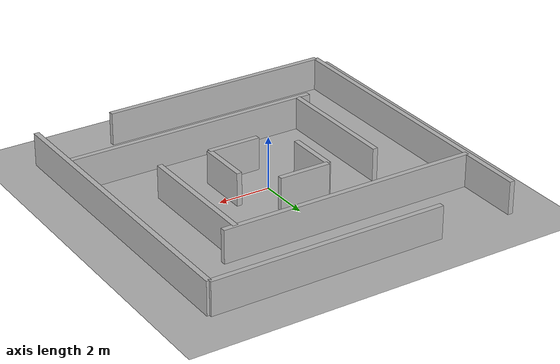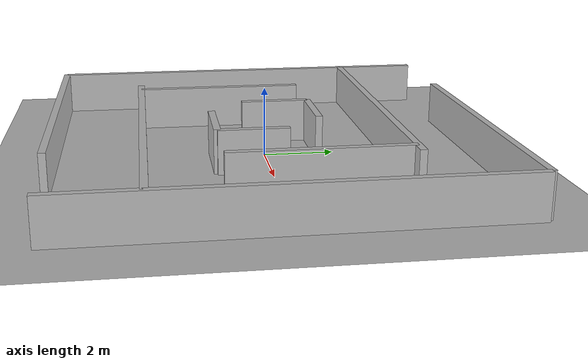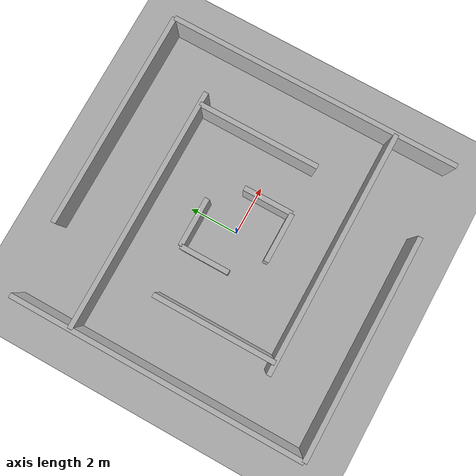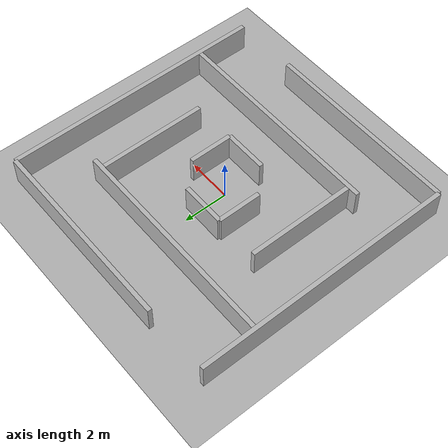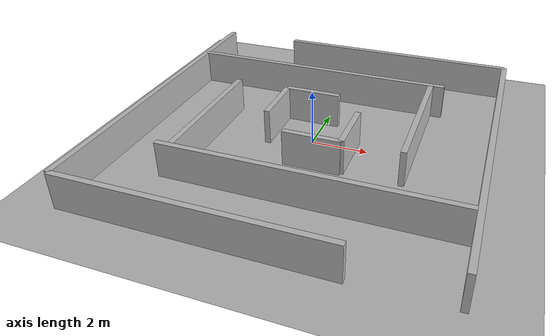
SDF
<?xml version="1.0" ?>
<sdf version="1.8">
  <world name="maze_world">

    <physics type="ignored">
      <max_step_size>0.001</max_step_size>
      <real_time_factor>1.0</real_time_factor>
    </physics>

    <plugin filename="gz-sim-physics-system" name="gz::sim::systems::Physics"/>
    <plugin filename="gz-sim-user-commands-system" name="gz::sim::systems::UserCommands"/>
    <plugin filename="gz-sim-scene-broadcaster-system" name="gz::sim::systems::SceneBroadcaster"/>
    <plugin filename="gz-sim-sensors-system" name="gz::sim::systems::Sensors">
      <render_engine>ogre</render_engine>
    </plugin>

    <light name="sun" type="directional">
      <pose>0 0 15 0 0 0</pose>
      <direction>-0.5 0.5 -1</direction>
      <diffuse>1 1 1 1</diffuse>
    </light>

    <model name="ground">
      <static>true</static>
      <link name="link">
        <collision name="collision">
          <geometry><plane><normal>0 0 1</normal><size>50 50</size></plane></geometry>
        </collision>
        <visual name="visual">
          <geometry><plane><normal>0 0 1</normal><size>50 50</size></plane></geometry>
          <material><ambient>0.7 0.7 0.7 1</ambient><diffuse>0.7 0.7 0.7 1</diffuse></material>
        </visual>
      </link>
    </model>

    <model name="final_spiral_maze">
      <static>true</static>
      <link name="walls">
        <material>
          <ambient>0.05 0.05 0.05 1</ambient>
          <diffuse>0.05 0.05 0.05 1</diffuse>
        </material>

        <visual name="out_top"><pose>1.5 6 0.5 0 0 0</pose><geometry><box><size>9 0.2 1.5</size></box></geometry></visual>
        <visual name="out_bot"><pose>-1.5 -6 0.5 0 0 0</pose><geometry><box><size>9 0.2 1.5</size></box></geometry></visual>
        <visual name="out_left"><pose>-6 0 0.5 0 0 0</pose><geometry><box><size>0.2 12 1.5</size></box></geometry></visual>
        <visual name="out_right"><pose>6 0 0.5 0 0 0</pose><geometry><box><size>0.2 12 1.5</size></box></geometry></visual>

        <visual name="mid_top"><pose>-1 3.5 0.5 0 0 0</pose><geometry><box><size>10 0.2 1.5</size></box></geometry></visual>
        <visual name="mid_bot"><pose>1 -3.5 0.5 0 0 0</pose><geometry><box><size>10 0.2 1.5</size></box></geometry></visual>
        <visual name="mid_left"><pose>-3.5 -1 0.5 0 0 0</pose><geometry><box><size>0.2 5 1.5</size></box></geometry></visual>
        <visual name="mid_right"><pose>3.5 1 0.5 0 0 0</pose><geometry><box><size>0.2 5 1.5</size></box></geometry></visual>

        <visual name="center_L1_v"><pose>-1.5 0.5 0.5 0 0 0</pose><geometry><box><size>0.2 2 1.5</size></box></geometry></visual>
        <visual name="center_L1_h"><pose>-0.5 1.5 0.5 0 0 0</pose><geometry><box><size>2 0.2 1.5</size></box></geometry></visual>

        <visual name="center_L2_v"><pose>1.5 -0.5 0.5 0 0 0</pose><geometry><box><size>0.2 2 1.5</size></box></geometry></visual>
        <visual name="center_L2_h"><pose>0.5 -1.5 0.5 0 0 0</pose><geometry><box><size>2 0.2 1.5</size></box></geometry></visual>

        <collision name="c1"><pose>1.5 6 0.5 0 0 0</pose><geometry><box><size>9 0.2 1.5</size></box></geometry></collision>
        <collision name="c2"><pose>-1.5 -6 0.5 0 0 0</pose><geometry><box><size>9 0.2 1.5</size></box></geometry></collision>
        <collision name="c3"><pose>-6 0 0.5 0 0 0</pose><geometry><box><size>0.2 12 1.5</size></box></geometry></collision>
        <collision name="c4"><pose>6 0 0.5 0 0 0</pose><geometry><box><size>0.2 12 1.5</size></box></geometry></collision>
        <collision name="c5"><pose>-1.5 0.5 0.5 0 0 0</pose><geometry><box><size>0.2 2 1.5</size></box></geometry></collision>
        <collision name="c6"><pose>-0.5 1.5 0.5 0 0 0</pose><geometry><box><size>2 0.2 1.5</size></box></geometry></collision>
        <collision name="c7"><pose>1.5 -0.5 0.5 0 0 0</pose><geometry><box><size>0.2 2 1.5</size></box></geometry></collision>
        <collision name="c8"><pose>0.5 -1.5 0.5 0 0 0</pose><geometry><box><size>2 0.2 1.5</size></box></geometry></collision>
      </link>
    </model>
  </world>
</sdf>
